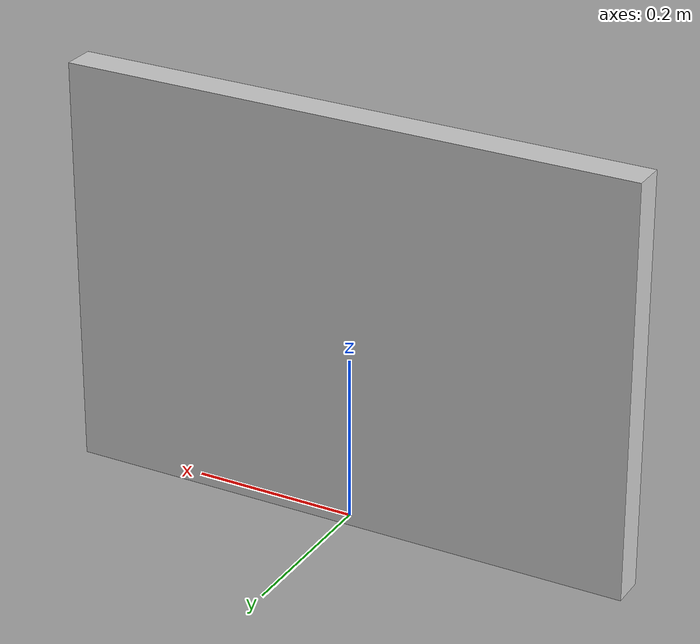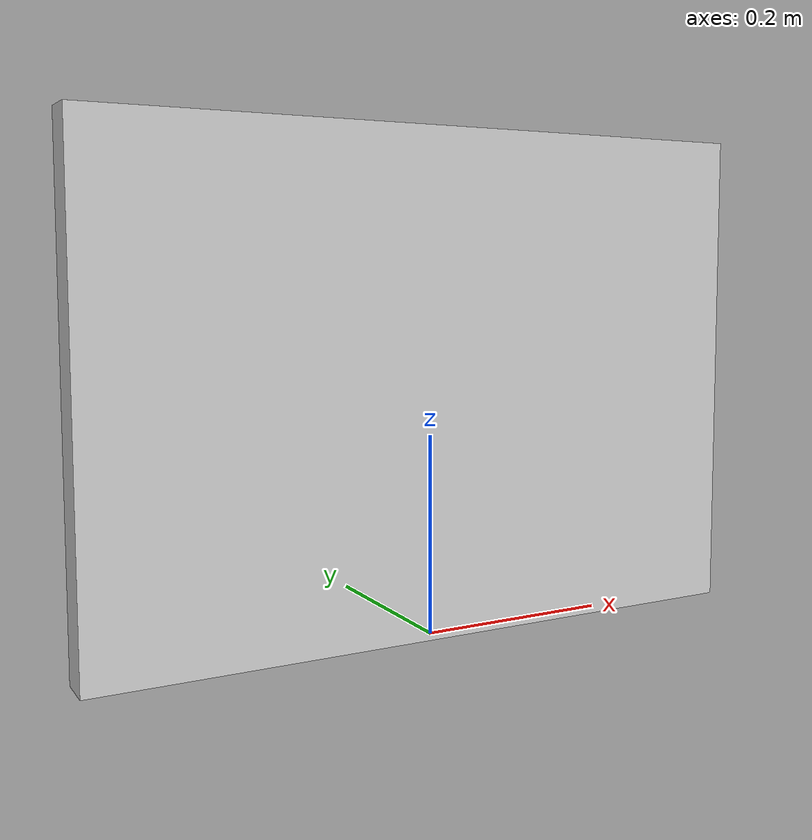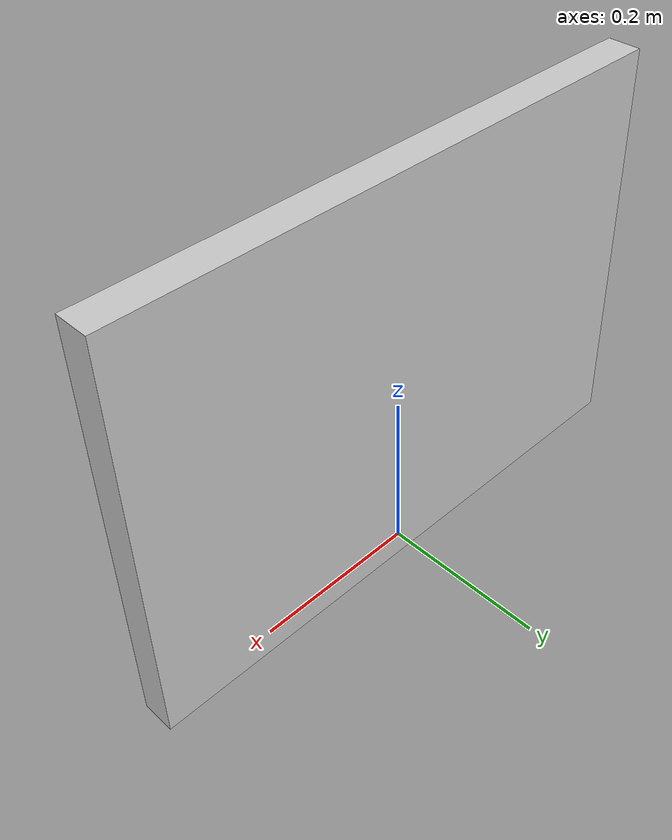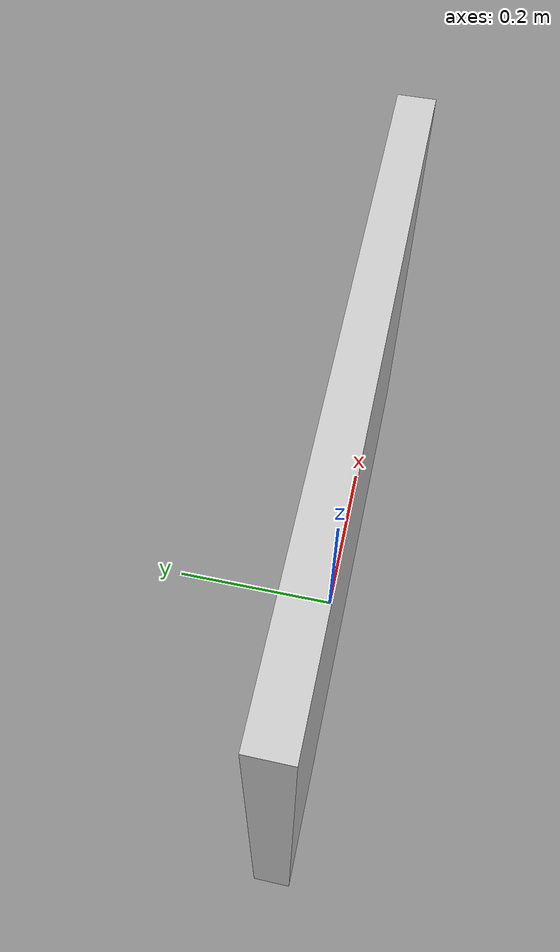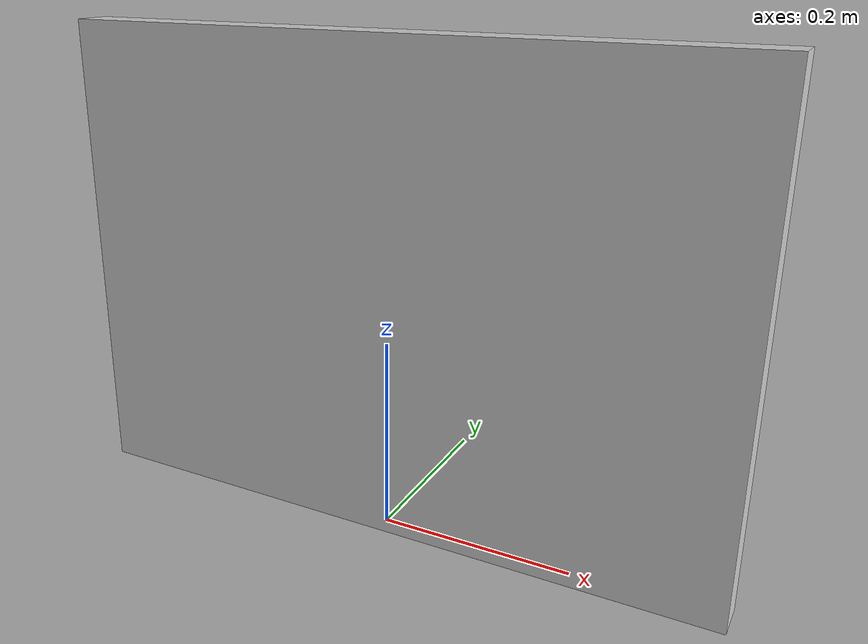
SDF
<?xml version="1.0" ?>
<sdf version="1.5">
  <model name="cp">
    <static>true</static>
    <link name="link">
      <visual name="visual">
        <geometry>
          <mesh>
            <uri>model://cpwhite/meshes/cp.dae</uri>
          </mesh>
        </geometry>
      </visual>
    </link>
  </model>
</sdf>
